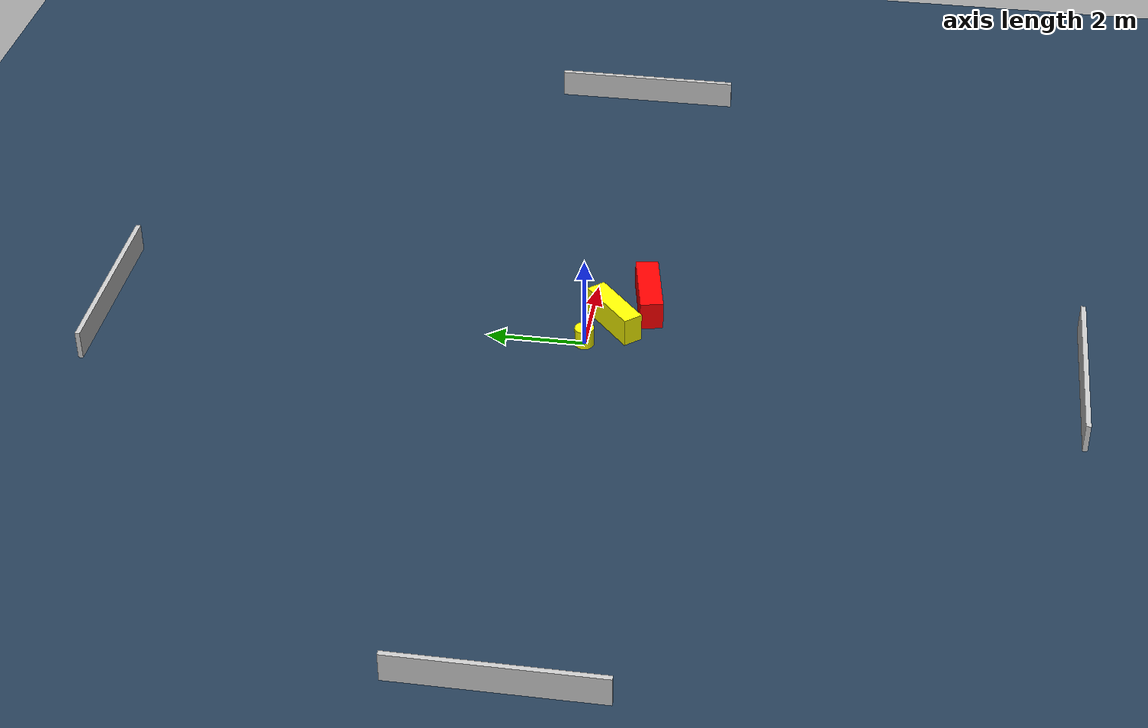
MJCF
<?xml version="1.0" ?>
<mujoco model="generated_environment">
  <option timestep="0.01" integrator="RK4" cone="elliptic"/>
  <default>
    <geom density="1"/>
  </default>
  <asset>
    <texture builtin="gradient" height="3072" name="skybox" rgb1="0.3 0.5 0.7" rgb2="0 0 0" type="skybox" width="512"/>
    <texture builtin="checker" height="300" name="groundplane" rgb1="0.2 0.3 0.4" rgb2="0.1 0.2 0.3" type="2d" width="300"/>
    <material name="groundplane" reflectance="0.2" texrepeat="5 5" texture="groundplane"/>
  </asset>
  <worldbody>
    <light dir="0 0 -1" directional="true" pos="0 0 1.5"/>
    <geom condim="3" friction="0.5 0.005 0.001" material="groundplane" name="floor" pos="0 0 0" size="0 0 0.05" type="plane"/>
    <body name="walls">
      <geom name="wall_1" condim="4" pos="-10.0 0.0 0.3" rgba="0.800000011920929 0.800000011920929 0.800000011920929 1.0" size="0.05 2.0 0.3" type="box"/>
      <geom name="wall_2" condim="4" pos="10.0 0.0 0.3" rgba="0.800000011920929 0.800000011920929 0.800000011920929 1.0" size="0.05 2.0 0.3" type="box"/>
      <geom name="wall_3" condim="4" pos="0.0 -10.0 0.3" rgba="0.800000011920929 0.800000011920929 0.800000011920929 1.0" size="2.0 0.05 0.3" type="box"/>
      <geom name="wall_4" condim="4" pos="0.0 10.0 0.3" rgba="0.800000011920929 0.800000011920929 0.800000011920929 1.0" size="2.0 0.05 0.3" type="box"/>
    </body>
    <body name="robot">
      <joint name="joint_x" type="slide" pos="0 0 0" axis="1 0 0"/>
      <joint name="joint_y" type="slide" pos="0 0 0" axis="0 1 0"/>
      <geom name="robot" type="cylinder" pos="0.0 0.0 0.2" size="0.2 0.2 0.0" mass="5.0" friction="1.0 0.005 0.0001" condim="4" rgba="1.0 1.0 0.0 1.0"/>
    </body>
    <body name="obstacle_1_movable">
      <geom name="obstacle_1_movable" condim="4" pos="0.725156795218009 -0.5107737795435218 0.3" euler="0 0 311.13204049736424" friction="0.0 0.005 0.001" rgba="1.0 1.0 0.0 1.0" size="0.20669903599998565 0.702028901086077 0.3" type="box" mass="0.1"/>
      <joint type="free"/>
    </body>
    <body name="obstacle_2_static">
      <geom name="obstacle_2_static" condim="4" pos="1.4976213738082274 -1.1339630526795226 0.3" euler="0 0 11.02571635060444" friction="0.0 0.005 0.001" rgba="1.0 0.0 0.0 1.0" size="0.7815494868029333 0.23786618548744054 0.3" type="box"/>
    </body>
  </worldbody>
  <actuator>
    <motor name="actuator_x" joint="joint_x" gear="1" ctrlrange="-1 1"/>
    <motor name="actuator_y" joint="joint_y" gear="1" ctrlrange="-1 1"/>
  </actuator>
</mujoco>
